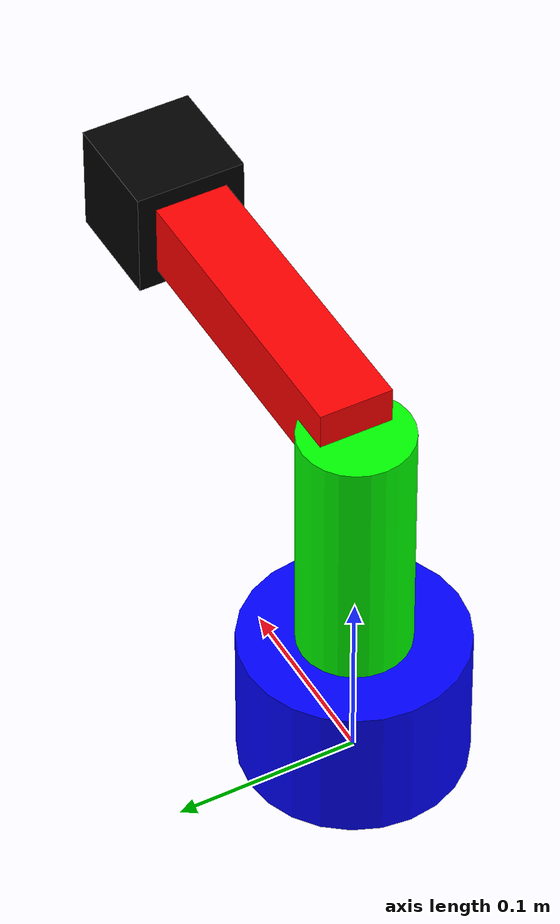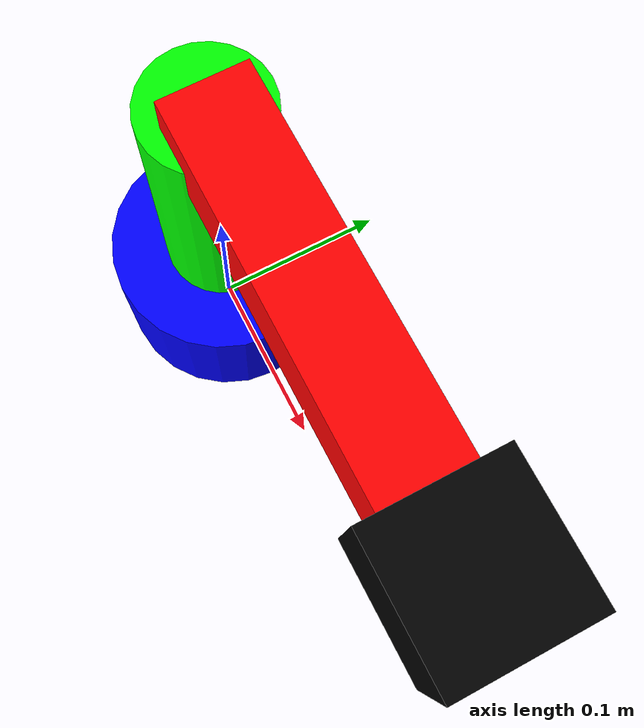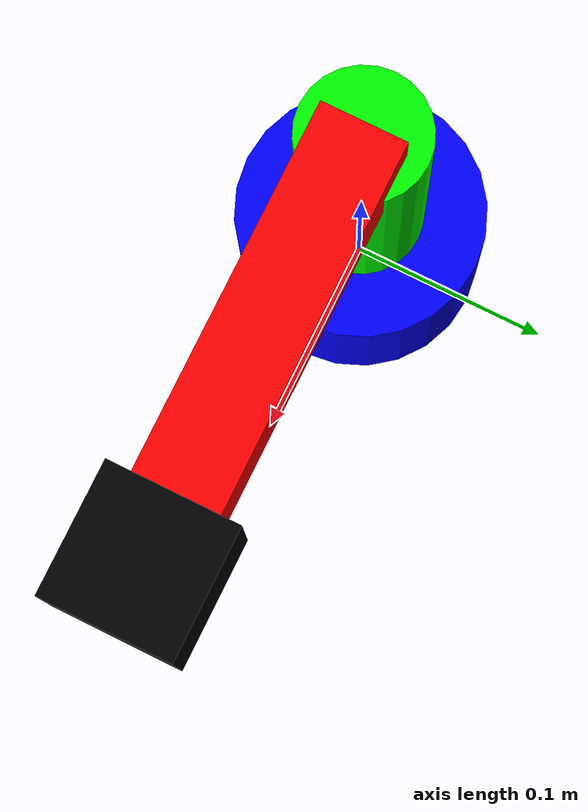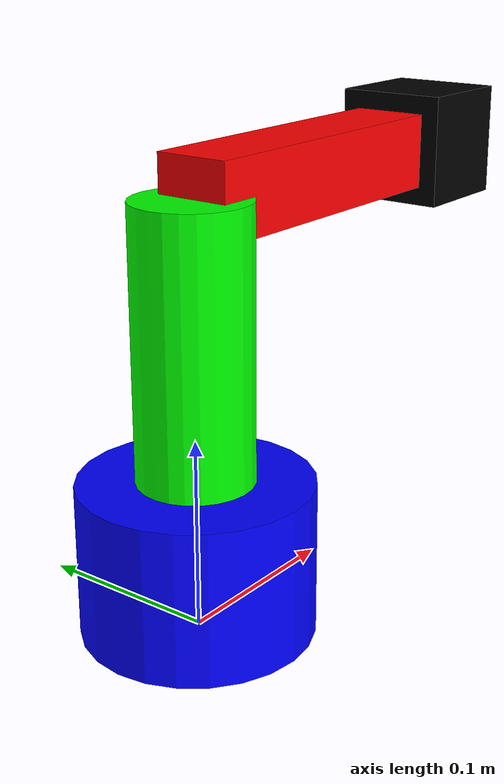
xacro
<?xml version="1.0"?>
<robot name="pan_tilt_head" xmlns:xacro="http://www.ros.org/wiki/xacro">

  <!-- WORLD LINK -->
  <link name="world"/>

  <!-- world to base -->
  <joint name="world_to_base" type="fixed">
    <parent link="world"/>
    <child link="base_link"/>
  </joint>
  <!-- ================= BASE ================= -->
  <link name="base_link">
    <visual>
      <geometry>
        <cylinder radius="0.06" length="0.08"/>
      </geometry>
      <origin xyz="0 0 0.04"/>
      <material name="blue">
        <color rgba="0 0 1 1"/>
      </material>
    </visual>
    <inertial>
      <mass value="0.15"/>
      <origin xyz="0 0 0.04"/>
      <inertia ixx="0.001" iyy="0.001" izz="0.001"
              ixy="0" ixz="0" iyz="0"/>
    </inertial>
    <collision>
      <geometry>
        <box size="0.2 0.05 0.05"/>
      </geometry>
    </collision>
  </link>

  <!-- ================= PAN ================= -->
  <link name="pan_link">
  <visual>
    <geometry>
      <cylinder radius="0.03" length="0.20"/>
    </geometry>
    <origin xyz="0 0 0.10"/>
    <material name="green">
      <color rgba="0 1 0 1"/>
    </material>
  </visual>
    <inertial>
    <mass value="0.08"/>
    <origin xyz="0 0 0.1"/>
    <inertia ixx="0.001" iyy="0.001" izz="0.001"
            ixy="0" ixz="0" iyz="0"/>
  </inertial>
    <collision>
  <geometry>
    <box size="0.2 0.05 0.05"/>
  </geometry>
</collision>
  </link>

  <joint name="pan_joint" type="revolute">
  <parent link="base_link"/>
  <child link="pan_link"/>
  <origin xyz="0 0 0.02"/>
  <axis xyz="0 0 1"/>

  <limit lower="-3.14" upper="3.14" effort="5.0" velocity="1.0"/>
  </joint>
  <!-- ================= TILT ================= -->
  <link name="tilt_link">
  <visual>
    <geometry>
      <box size="0.20 0.04 0.04"/>
    </geometry>
    <origin xyz="0.10 0 0"/>
    <material name="red">
      <color rgba="1 0 0 1"/>
    </material>
  </visual>
  <inertial>
  <mass value="0.086"/>
  <origin xyz="0.1 0 0"/>
  <inertia ixx="0.001" iyy="0.001" izz="0.001"
           ixy="0" ixz="0" iyz="0"/>
</inertial>
   <collision>
  <geometry>
    <box size="0.2 0.05 0.05"/>
  </geometry>
</collision>
  </link>

    <joint name="tilt_joint" type="revolute">
  <parent link="pan_link"/>
  <child link="tilt_link"/>
  <origin xyz="0 0 0.20"/>
  <axis xyz="0 1 0"/>

  <limit lower="-1.57" upper="0.78" effort="5.0" velocity="1.0"/>
</joint>
  <!-- ================= CAMERA ================= -->
  <link name="camera_link">
    <visual>
      <geometry>
        <box size="0.06 0.06 0.06"/>
      </geometry>
      <origin xyz="0.2 0 0"/>
      <material name="black">
        <color rgba="0 0 0 1"/>
      </material>
    </visual>
  </link>

  <joint name="camera_fixed" type="fixed">
    <parent link="tilt_link"/>
    <child link="camera_link"/>
  </joint>
<!-- ros2_control -->
<ros2_control name="Sensor_head_control" type="system">

  <hardware>
    <plugin>gz_ros2_control/GazeboSystem</plugin>
  </hardware>

  <joint name="pan_joint">
    <command_interface name="position"/>
    <state_interface name="position"/>
    <state_interface name="velocity"/>
  </joint>

  <joint name="tilt_joint">
    <command_interface name="position"/>
    <state_interface name="position"/>
    <state_interface name="velocity"/>
  </joint>

</ros2_control>

<!-- Gazebo plugin MUST be separate -->
<gazebo>
  <plugin filename="libgz_ros2_control-system.so"
          name="gz_ros2_control">
    <parameters>config/controllers.yaml</parameters>
  </plugin>
</gazebo>
</robot>
